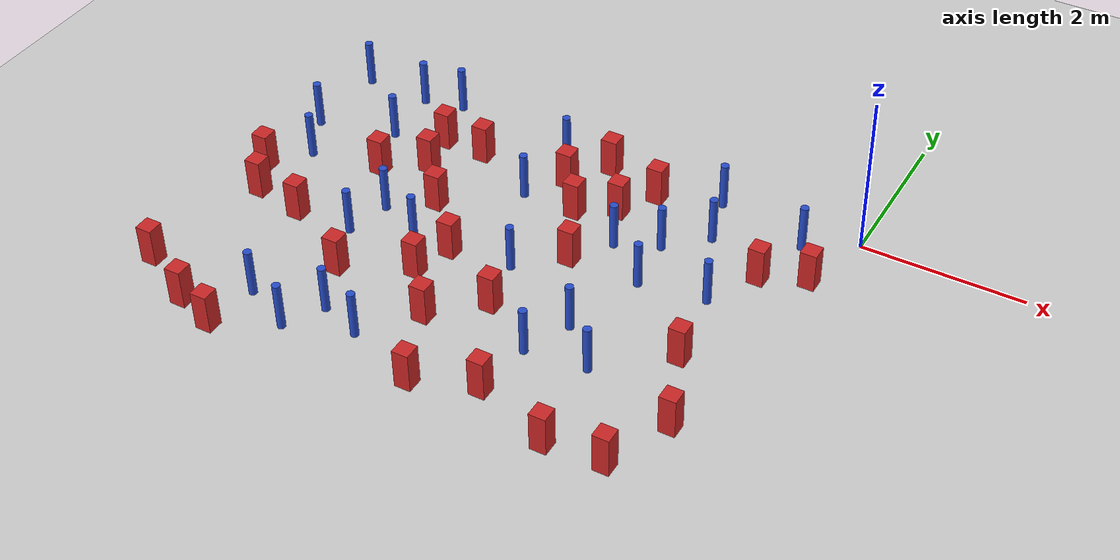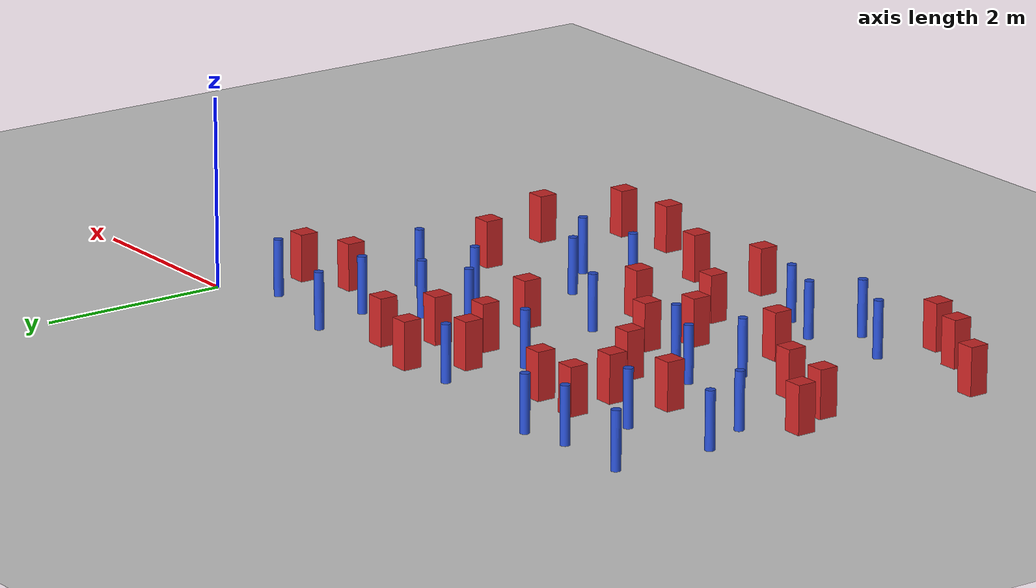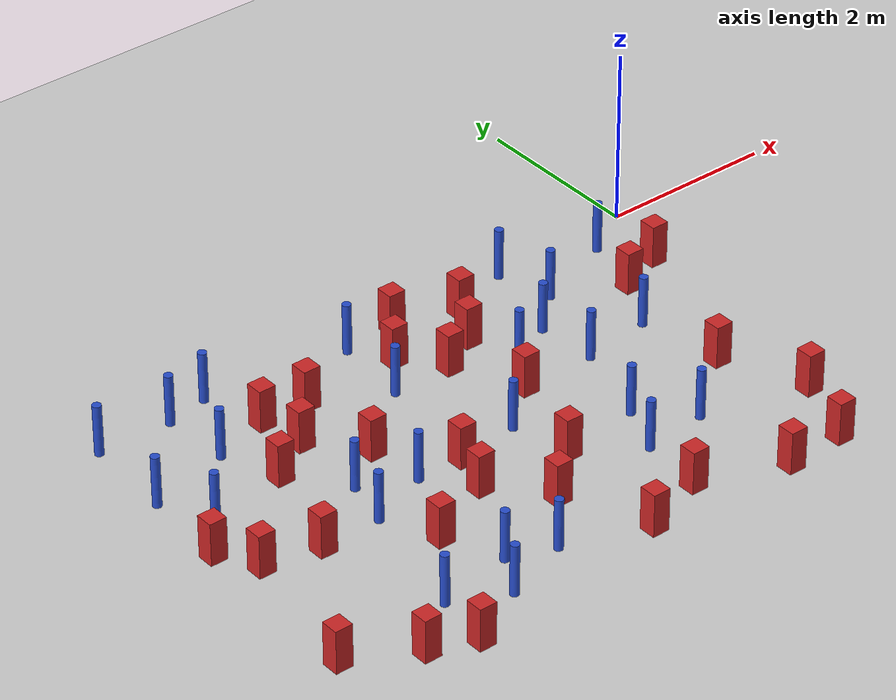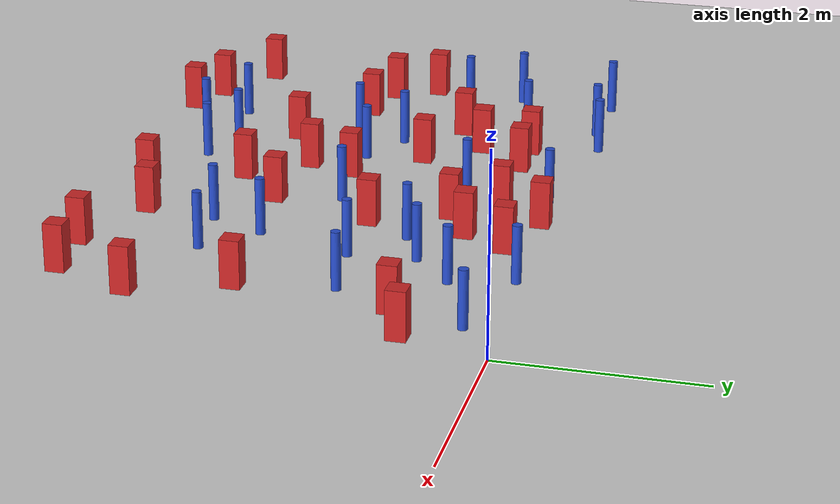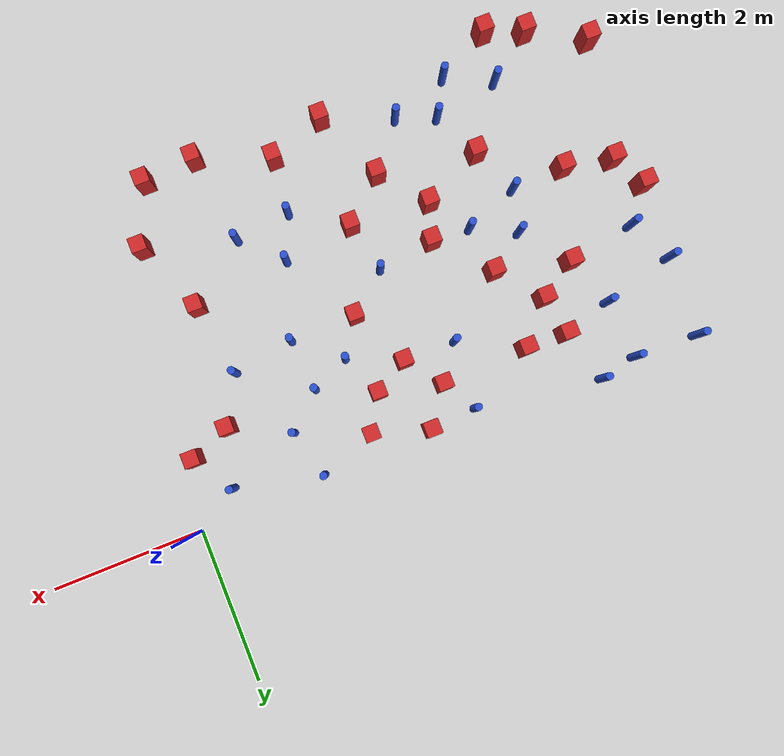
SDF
<sdf version="1.6">
 <world name="default">
  <model name="ground_plane">
   <static>1</static>
   <link name="link">
    <collision name="collision">
     <geometry><plane><normal>0 0 1</normal><size>100 100</size></plane></geometry>
     <surface><friction><ode><mu>100</mu><mu2>50</mu2></ode></friction></surface>
    </collision>
    <visual name="visual">
     <cast_shadows>0</cast_shadows>
     <geometry><plane><normal>0 0 1</normal><size>100 100</size></plane></geometry>
     <material>
      <ambient>1.0 1.0 1.0 1.0</ambient>
      <diffuse>0.8 0.8 0.8 1.0</diffuse>
      <specular>0.01 0.01 0.01 1.000000</specular>
     </material>
    </visual>
   </link>
  </model>
  <model name="pole_obstacle1">
   <static>true</static>
   <pose>-1.12794419745 -1.71041319607 2.88873142074e-08 -9.90536689672e-09 4.60219948993e-07 -1.20965994959e-07</pose>
   <link name="link">
    <pose>0 0 0.3 0 -0 0</pose>
    <inertial>
     <mass>1</mass>
     <inertia><ixx>0.145833</ixx><ixy>0</ixy><ixz>0</ixz><iyy>0.145833</iyy><iyz>0</iyz><izz>0.125</izz></inertia>
    </inertial>
    <collision name="collision">
     <geometry><cylinder><radius>0.05</radius><length>.6</length></cylinder></geometry>
    </collision>
    <visual name="visual">
     <geometry><cylinder><radius>0.05</radius><length>.6</length></cylinder></geometry>
     <material>
      <script><name>Gazebo/Blue</name><uri>file://media/materials/scripts/gazebo.material</uri></script>
     </material>
    </visual>
   </link>
  </model>
  <model name="square_post_obstacle0">
   <static>true</static>
   <pose>-4.23861289255 -2.85928618477 8.22691968438e-08 7.2212513382e-06 -7.54495500217e-07 2.29674213826e-05</pose>
   <link name="link">
    <pose>0 0 0.25 0 -0 0</pose>
    <inertial>
     <mass>100</mass>
     <inertia>
      <ixx>0.166667</ixx>
      <ixy>0</ixy>
      <ixz>0</ixz>
      <iyy>0.166667</iyy>
      <iyz>0</iyz>
      <izz>0.166667</izz>
     </inertia>
    </inertial>
    <collision name="collision"><geometry><box><size>.2 .2 .5</size></box></geometry></collision>
    <visual name="visual">
     <geometry><box><size>.2 .2 .5</size></box></geometry>
     <material>
      <script><name>Gazebo/Red</name><uri>file://media/materials/scripts/gazebo.material</uri></script>
     </material>
    </visual>
   </link>
  </model>
  <model name="square_post_obstacle10">
   <static>true</static>
   <pose>-6.01871886512 -2.64771498312 8.22691968438e-08 7.2212513382e-06 -7.54495500217e-07 2.29674213826e-05</pose>
   <link name="link">
    <pose>0 0 0.25 0 -0 0</pose>
    <inertial>
     <mass>100</mass>
     <inertia>
      <ixx>0.166667</ixx>
      <ixy>0</ixy>
      <ixz>0</ixz>
      <iyy>0.166667</iyy>
      <iyz>0</iyz>
      <izz>0.166667</izz>
     </inertia>
    </inertial>
    <collision name="collision"><geometry><box><size>.2 .2 .5</size></box></geometry></collision>
    <visual name="visual">
     <geometry><box><size>.2 .2 .5</size></box></geometry>
     <material>
      <script><name>Gazebo/Red</name><uri>file://media/materials/scripts/gazebo.material</uri></script>
     </material>
    </visual>
   </link>
  </model>
  <model name="square_post_obstacle12">
   <static>true</static>
   <pose>-1.61959890597 -4.50232946245 8.22691968438e-08 7.2212513382e-06 -7.54495500217e-07 2.29674213826e-05</pose>
   <link name="link">
    <pose>0 0 0.25 0 -0 0</pose>
    <inertial>
     <mass>100</mass>
     <inertia>
      <ixx>0.166667</ixx>
      <ixy>0</ixy>
      <ixz>0</ixz>
      <iyy>0.166667</iyy>
      <iyz>0</iyz>
      <izz>0.166667</izz>
     </inertia>
    </inertial>
    <collision name="collision"><geometry><box><size>.2 .2 .5</size></box></geometry></collision>
    <visual name="visual">
     <geometry><box><size>.2 .2 .5</size></box></geometry>
     <material>
      <script><name>Gazebo/Red</name><uri>file://media/materials/scripts/gazebo.material</uri></script>
     </material>
    </visual>
   </link>
  </model>
  <model name="square_post_obstacle13">
   <static>true</static>
   <pose>-6.90271289844 -2.06878785685 8.22691968438e-08 7.2212513382e-06 -7.54495500217e-07 2.29674213826e-05</pose>
   <link name="link">
    <pose>0 0 0.25 0 -0 0</pose>
    <inertial>
     <mass>100</mass>
     <inertia>
      <ixx>0.166667</ixx>
      <ixy>0</ixy>
      <ixz>0</ixz>
      <iyy>0.166667</iyy>
      <iyz>0</iyz>
      <izz>0.166667</izz>
     </inertia>
    </inertial>
    <collision name="collision"><geometry><box><size>.2 .2 .5</size></box></geometry></collision>
    <visual name="visual">
     <geometry><box><size>.2 .2 .5</size></box></geometry>
     <material>
      <script><name>Gazebo/Red</name><uri>file://media/materials/scripts/gazebo.material</uri></script>
     </material>
    </visual>
   </link>
  </model>
  <model name="square_post_obstacle19">
   <static>true</static>
   <pose>-2.7245175112 -0.820515916125 8.22691968438e-08 7.2212513382e-06 -7.54495500217e-07 2.29674213826e-05</pose>
   <link name="link">
    <pose>0 0 0.25 0 -0 0</pose>
    <inertial>
     <mass>100</mass>
     <inertia>
      <ixx>0.166667</ixx>
      <ixy>0</ixy>
      <ixz>0</ixz>
      <iyy>0.166667</iyy>
      <iyz>0</iyz>
      <izz>0.166667</izz>
     </inertia>
    </inertial>
    <collision name="collision"><geometry><box><size>.2 .2 .5</size></box></geometry></collision>
    <visual name="visual">
     <geometry><box><size>.2 .2 .5</size></box></geometry>
     <material>
      <script><name>Gazebo/Red</name><uri>file://media/materials/scripts/gazebo.material</uri></script>
     </material>
    </visual>
   </link>
  </model>
  <model name="pole_obstacle31">
   <static>true</static>
   <pose>-0.585322574851 -0.355439640165 2.88873142074e-08 -9.90536689558e-09 4.60219948996e-07 -1.20965994957e-07</pose>
   <link name="link">
    <pose>0 0 0.3 0 -0 0</pose>
    <inertial>
     <mass>1</mass>
     <inertia><ixx>0.145833</ixx><ixy>0</ixy><ixz>0</ixz><iyy>0.145833</iyy><iyz>0</iyz><izz>0.125</izz></inertia>
    </inertial>
    <collision name="collision">
     <geometry><cylinder><radius>0.05</radius><length>.6</length></cylinder></geometry>
    </collision>
    <visual name="visual">
     <geometry><cylinder><radius>0.05</radius><length>.6</length></cylinder></geometry>
     <material>
      <script><name>Gazebo/Blue</name><uri>file://media/materials/scripts/gazebo.material</uri></script>
     </material>
    </visual>
   </link>
  </model>
  <model name="square_post_obstacle25">
   <static>true</static>
   <pose>-3.74527833007 -3.45318272488 8.22691968438e-08 7.2212513382e-06 -7.54495500217e-07 2.29674213826e-05</pose>
   <link name="link">
    <pose>0 0 0.25 0 -0 0</pose>
    <inertial>
     <mass>100</mass>
     <inertia>
      <ixx>0.166667</ixx>
      <ixy>0</ixy>
      <ixz>0</ixz>
      <iyy>0.166667</iyy>
      <iyz>0</iyz>
      <izz>0.166667</izz>
     </inertia>
    </inertial>
    <collision name="collision"><geometry><box><size>.2 .2 .5</size></box></geometry></collision>
    <visual name="visual">
     <geometry><box><size>.2 .2 .5</size></box></geometry>
     <material>
      <script><name>Gazebo/Red</name><uri>file://media/materials/scripts/gazebo.material</uri></script>
     </material>
    </visual>
   </link>
  </model>
  <model name="square_post_obstacle26">
   <static>true</static>
   <pose>-0.789775895719 -1.10357461723 8.22691968438e-08 7.2212513382e-06 -7.54495500217e-07 2.29674213826e-05</pose>
   <link name="link">
    <pose>0 0 0.25 0 -0 0</pose>
    <inertial>
     <mass>100</mass>
     <inertia>
      <ixx>0.166667</ixx>
      <ixy>0</ixy>
      <ixz>0</ixz>
      <iyy>0.166667</iyy>
      <iyz>0</iyz>
      <izz>0.166667</izz>
     </inertia>
    </inertial>
    <collision name="collision"><geometry><box><size>.2 .2 .5</size></box></geometry></collision>
    <visual name="visual">
     <geometry><box><size>.2 .2 .5</size></box></geometry>
     <material>
      <script><name>Gazebo/Red</name><uri>file://media/materials/scripts/gazebo.material</uri></script>
     </material>
    </visual>
   </link>
  </model>
  <model name="square_post_obstacle30">
   <static>true</static>
   <pose>-3.33133644619 -4.40594873121 8.22691968438e-08 7.2212513382e-06 -7.54495500217e-07 2.29674213826e-05</pose>
   <link name="link">
    <pose>0 0 0.25 0 -0 0</pose>
    <inertial>
     <mass>100</mass>
     <inertia>
      <ixx>0.166667</ixx>
      <ixy>0</ixy>
      <ixz>0</ixz>
      <iyy>0.166667</iyy>
      <iyz>0</iyz>
      <izz>0.166667</izz>
     </inertia>
    </inertial>
    <collision name="collision"><geometry><box><size>.2 .2 .5</size></box></geometry></collision>
    <visual name="visual">
     <geometry><box><size>.2 .2 .5</size></box></geometry>
     <material>
      <script><name>Gazebo/Red</name><uri>file://media/materials/scripts/gazebo.material</uri></script>
     </material>
    </visual>
   </link>
  </model>
  <model name="pole_obstacle41">
   <static>true</static>
   <pose>-5.02840246182 -4.33032711811 2.88873142074e-08 -9.90536690842e-09 4.60219948965e-07 -1.20965994976e-07</pose>
   <link name="link">
    <pose>0 0 0.3 0 -0 0</pose>
    <inertial>
     <mass>1</mass>
     <inertia><ixx>0.145833</ixx><ixy>0</ixy><ixz>0</ixz><iyy>0.145833</iyy><iyz>0</iyz><izz>0.125</izz></inertia>
    </inertial>
    <collision name="collision">
     <geometry><cylinder><radius>0.05</radius><length>.6</length></cylinder></geometry>
    </collision>
    <visual name="visual">
     <geometry><cylinder><radius>0.05</radius><length>.6</length></cylinder></geometry>
     <material>
      <script><name>Gazebo/Blue</name><uri>file://media/materials/scripts/gazebo.material</uri></script>
     </material>
    </visual>
   </link>
  </model>
  <model name="square_post_obstacle31">
   <static>true</static>
   <pose>-2.81220022089 -1.84098452405 8.22691968438e-08 7.2212513382e-06 -7.54495500217e-07 2.29674213826e-05</pose>
   <link name="link">
    <pose>0 0 0.25 0 -0 0</pose>
    <inertial>
     <mass>100</mass>
     <inertia>
      <ixx>0.166667</ixx>
      <ixy>0</ixy>
      <ixz>0</ixz>
      <iyy>0.166667</iyy>
      <iyz>0</iyz>
      <izz>0.166667</izz>
     </inertia>
    </inertial>
    <collision name="collision"><geometry><box><size>.2 .2 .5</size></box></geometry></collision>
    <visual name="visual">
     <geometry><box><size>.2 .2 .5</size></box></geometry>
     <material>
      <script><name>Gazebo/Red</name><uri>file://media/materials/scripts/gazebo.material</uri></script>
     </material>
    </visual>
   </link>
  </model>
  <model name="pole_obstacle52">
   <static>true</static>
   <pose>-2.49685457262 -1.36036051062 2.88873142074e-08 -9.90536689395e-09 4.60219949e-07 -1.20965994953e-07</pose>
   <link name="link">
    <pose>0 0 0.3 0 -0 0</pose>
    <inertial>
     <mass>1</mass>
     <inertia><ixx>0.145833</ixx><ixy>0</ixy><ixz>0</ixz><iyy>0.145833</iyy><iyz>0</iyz><izz>0.125</izz></inertia>
    </inertial>
    <collision name="collision">
     <geometry><cylinder><radius>0.05</radius><length>.6</length></cylinder></geometry>
    </collision>
    <visual name="visual">
     <geometry><cylinder><radius>0.05</radius><length>.6</length></cylinder></geometry>
     <material>
      <script><name>Gazebo/Blue</name><uri>file://media/materials/scripts/gazebo.material</uri></script>
     </material>
    </visual>
   </link>
  </model>
  <model name="square_post_obstacle41">
   <static>true</static>
   <pose>-0.971532044483 -2.6885056783 8.22691968438e-08 7.2212513382e-06 -7.54495500217e-07 2.29674213826e-05</pose>
   <link name="link">
    <pose>0 0 0.25 0 -0 0</pose>
    <inertial>
     <mass>100</mass>
     <inertia>
      <ixx>0.166667</ixx>
      <ixy>0</ixy>
      <ixz>0</ixz>
      <iyy>0.166667</iyy>
      <iyz>0</iyz>
      <izz>0.166667</izz>
     </inertia>
    </inertial>
    <collision name="collision"><geometry><box><size>.2 .2 .5</size></box></geometry></collision>
    <visual name="visual">
     <geometry><box><size>.2 .2 .5</size></box></geometry>
     <material>
      <script><name>Gazebo/Red</name><uri>file://media/materials/scripts/gazebo.material</uri></script>
     </material>
    </visual>
   </link>
  </model>
  <model name="pole_obstacle55">
   <static>true</static>
   <pose>-2.25177406111 -2.81753825649 2.88873142074e-08 -9.90536690232e-09 4.6021994898e-07 -1.20965994968e-07</pose>
   <link name="link">
    <pose>0 0 0.3 0 -0 0</pose>
    <inertial>
     <mass>1</mass>
     <inertia><ixx>0.145833</ixx><ixy>0</ixy><ixz>0</ixz><iyy>0.145833</iyy><iyz>0</iyz><izz>0.125</izz></inertia>
    </inertial>
    <collision name="collision">
     <geometry><cylinder><radius>0.05</radius><length>.6</length></cylinder></geometry>
    </collision>
    <visual name="visual">
     <geometry><cylinder><radius>0.05</radius><length>.6</length></cylinder></geometry>
     <material>
      <script><name>Gazebo/Blue</name><uri>file://media/materials/scripts/gazebo.material</uri></script>
     </material>
    </visual>
   </link>
  </model>
  <model name="square_post_obstacle44">
   <static>true</static>
   <pose>-4.078971965 -2.37898387037 8.22691968438e-08 7.2212513382e-06 -7.54495500217e-07 2.29674213826e-05</pose>
   <link name="link">
    <pose>0 0 0.25 0 -0 0</pose>
    <inertial>
     <mass>100</mass>
     <inertia>
      <ixx>0.166667</ixx>
      <ixy>0</ixy>
      <ixz>0</ixz>
      <iyy>0.166667</iyy>
      <iyz>0</iyz>
      <izz>0.166667</izz>
     </inertia>
    </inertial>
    <collision name="collision"><geometry><box><size>.2 .2 .5</size></box></geometry></collision>
    <visual name="visual">
     <geometry><box><size>.2 .2 .5</size></box></geometry>
     <material>
      <script><name>Gazebo/Red</name><uri>file://media/materials/scripts/gazebo.material</uri></script>
     </material>
    </visual>
   </link>
  </model>
  <model name="pole_obstacle68">
   <static>true</static>
   <pose>-5.63773774799 -4.03275519616 2.88873142074e-08 -9.90536690819e-09 4.60219948966e-07 -1.20965994975e-07</pose>
   <link name="link">
    <pose>0 0 0.3 0 -0 0</pose>
    <inertial>
     <mass>1</mass>
     <inertia><ixx>0.145833</ixx><ixy>0</ixy><ixz>0</ixz><iyy>0.145833</iyy><iyz>0</iyz><izz>0.125</izz></inertia>
    </inertial>
    <collision name="collision">
     <geometry><cylinder><radius>0.05</radius><length>.6</length></cylinder></geometry>
    </collision>
    <visual name="visual">
     <geometry><cylinder><radius>0.05</radius><length>.6</length></cylinder></geometry>
     <material>
      <script><name>Gazebo/Blue</name><uri>file://media/materials/scripts/gazebo.material</uri></script>
     </material>
    </visual>
   </link>
  </model>
  <model name="square_post_obstacle51">
   <static>true</static>
   <pose>-5.04753763029 -3.24314444858 8.22691968438e-08 7.2212513382e-06 -7.54495500217e-07 2.29674213826e-05</pose>
   <link name="link">
    <pose>0 0 0.25 0 -0 0</pose>
    <inertial>
     <mass>100</mass>
     <inertia>
      <ixx>0.166667</ixx>
      <ixy>0</ixy>
      <ixz>0</ixz>
      <iyy>0.166667</iyy>
      <iyz>0</iyz>
      <izz>0.166667</izz>
     </inertia>
    </inertial>
    <collision name="collision"><geometry><box><size>.2 .2 .5</size></box></geometry></collision>
    <visual name="visual">
     <geometry><box><size>.2 .2 .5</size></box></geometry>
     <material>
      <script><name>Gazebo/Red</name><uri>file://media/materials/scripts/gazebo.material</uri></script>
     </material>
    </visual>
   </link>
  </model>
  <model name="square_post_obstacle57">
   <static>true</static>
   <pose>-0.586242287796 -3.6490633079 8.22691968438e-08 7.2212513382e-06 -7.54495500217e-07 2.29674213826e-05</pose>
   <link name="link">
    <pose>0 0 0.25 0 -0 0</pose>
    <inertial>
     <mass>100</mass>
     <inertia>
      <ixx>0.166667</ixx>
      <ixy>0</ixy>
      <ixz>0</ixz>
      <iyy>0.166667</iyy>
      <iyz>0</iyz>
      <izz>0.166667</izz>
     </inertia>
    </inertial>
    <collision name="collision"><geometry><box><size>.2 .2 .5</size></box></geometry></collision>
    <visual name="visual">
     <geometry><box><size>.2 .2 .5</size></box></geometry>
     <material>
      <script><name>Gazebo/Red</name><uri>file://media/materials/scripts/gazebo.material</uri></script>
     </material>
    </visual>
   </link>
  </model>
  <model name="pole_obstacle70">
   <static>true</static>
   <pose>-6.77782562431 0.00113634829277 2.88873142074e-08 -9.90536689285e-09 4.60219949002e-07 -1.20965994954e-07</pose>
   <link name="link">
    <pose>0 0 0.3 0 -0 0</pose>
    <inertial>
     <mass>1</mass>
     <inertia><ixx>0.145833</ixx><ixy>0</ixy><ixz>0</ixz><iyy>0.145833</iyy><iyz>0</iyz><izz>0.125</izz></inertia>
    </inertial>
    <collision name="collision">
     <geometry><cylinder><radius>0.05</radius><length>.6</length></cylinder></geometry>
    </collision>
    <visual name="visual">
     <geometry><cylinder><radius>0.05</radius><length>.6</length></cylinder></geometry>
     <material>
      <script><name>Gazebo/Blue</name><uri>file://media/materials/scripts/gazebo.material</uri></script>
     </material>
    </visual>
   </link>
  </model>
  <model name="square_post_obstacle61">
   <static>true</static>
   <pose>-4.68151587948 -1.71865466146 8.22691968438e-08 7.2212513382e-06 -7.54495500217e-07 2.29674213826e-05</pose>
   <link name="link">
    <pose>0 0 0.25 0 -0 0</pose>
    <inertial>
     <mass>100</mass>
     <inertia>
      <ixx>0.166667</ixx>
      <ixy>0</ixy>
      <ixz>0</ixz>
      <iyy>0.166667</iyy>
      <iyz>0</iyz>
      <izz>0.166667</izz>
     </inertia>
    </inertial>
    <collision name="collision"><geometry><box><size>.2 .2 .5</size></box></geometry></collision>
    <visual name="visual">
     <geometry><box><size>.2 .2 .5</size></box></geometry>
     <material>
      <script><name>Gazebo/Red</name><uri>file://media/materials/scripts/gazebo.material</uri></script>
     </material>
    </visual>
   </link>
  </model>
  <model name="pole_obstacle75">
   <static>true</static>
   <pose>-1.75779612502 -3.30815682891 2.88873142074e-08 -9.90536689791e-09 4.6021994899e-07 -1.20965994959e-07</pose>
   <link name="link">
    <pose>0 0 0.3 0 -0 0</pose>
    <inertial>
     <mass>1</mass>
     <inertia><ixx>0.145833</ixx><ixy>0</ixy><ixz>0</ixz><iyy>0.145833</iyy><iyz>0</iyz><izz>0.125</izz></inertia>
    </inertial>
    <collision name="collision">
     <geometry><cylinder><radius>0.05</radius><length>.6</length></cylinder></geometry>
    </collision>
    <visual name="visual">
     <geometry><cylinder><radius>0.05</radius><length>.6</length></cylinder></geometry>
     <material>
      <script><name>Gazebo/Blue</name><uri>file://media/materials/scripts/gazebo.material</uri></script>
     </material>
    </visual>
   </link>
  </model>
  <model name="pole_obstacle79">
   <static>true</static>
   <pose>-5.87932402268 -0.809223617223 2.88873142074e-08 -9.90536689837e-09 4.60219948989e-07 -1.2096599496e-07</pose>
   <link name="link">
    <pose>0 0 0.3 0 -0 0</pose>
    <inertial>
     <mass>1</mass>
     <inertia><ixx>0.145833</ixx><ixy>0</ixy><ixz>0</ixz><iyy>0.145833</iyy><iyz>0</iyz><izz>0.125</izz></inertia>
    </inertial>
    <collision name="collision">
     <geometry><cylinder><radius>0.05</radius><length>.6</length></cylinder></geometry>
    </collision>
    <visual name="visual">
     <geometry><cylinder><radius>0.05</radius><length>.6</length></cylinder></geometry>
     <material>
      <script><name>Gazebo/Blue</name><uri>file://media/materials/scripts/gazebo.material</uri></script>
     </material>
    </visual>
   </link>
  </model>
  <model name="square_post_obstacle72">
   <static>true</static>
   <pose>-3.17727930824 -1.07449339515 8.22691968438e-08 7.2212513382e-06 -7.54495500217e-07 2.29674213826e-05</pose>
   <link name="link">
    <pose>0 0 0.25 0 -0 0</pose>
    <inertial>
     <mass>100</mass>
     <inertia>
      <ixx>0.166667</ixx>
      <ixy>0</ixy>
      <ixz>0</ixz>
      <iyy>0.166667</iyy>
      <iyz>0</iyz>
      <izz>0.166667</izz>
     </inertia>
    </inertial>
    <collision name="collision"><geometry><box><size>.2 .2 .5</size></box></geometry></collision>
    <visual name="visual">
     <geometry><box><size>.2 .2 .5</size></box></geometry>
     <material>
      <script><name>Gazebo/Red</name><uri>file://media/materials/scripts/gazebo.material</uri></script>
     </material>
    </visual>
   </link>
  </model>
  <model name="pole_obstacle87">
   <static>true</static>
   <pose>-4.60158974101 -2.34469577858 2.88873142074e-08 -9.90536690245e-09 4.6021994898e-07 -1.20965994966e-07</pose>
   <link name="link">
    <pose>0 0 0.3 0 -0 0</pose>
    <inertial>
     <mass>1</mass>
     <inertia><ixx>0.145833</ixx><ixy>0</ixy><ixz>0</ixz><iyy>0.145833</iyy><iyz>0</iyz><izz>0.125</izz></inertia>
    </inertial>
    <collision name="collision">
     <geometry><cylinder><radius>0.05</radius><length>.6</length></cylinder></geometry>
    </collision>
    <visual name="visual">
     <geometry><cylinder><radius>0.05</radius><length>.6</length></cylinder></geometry>
     <material>
      <script><name>Gazebo/Blue</name><uri>file://media/materials/scripts/gazebo.material</uri></script>
     </material>
    </visual>
   </link>
  </model>
  <model name="square_post_obstacle78">
   <static>true</static>
   <pose>-0.256691971917 -0.884450498244 8.22691968438e-08 7.2212513382e-06 -7.54495500217e-07 2.29674213826e-05</pose>
   <link name="link">
    <pose>0 0 0.25 0 -0 0</pose>
    <inertial>
     <mass>100</mass>
     <inertia>
      <ixx>0.166667</ixx>
      <ixy>0</ixy>
      <ixz>0</ixz>
      <iyy>0.166667</iyy>
      <iyz>0</iyz>
      <izz>0.166667</izz>
     </inertia>
    </inertial>
    <collision name="collision"><geometry><box><size>.2 .2 .5</size></box></geometry></collision>
    <visual name="visual">
     <geometry><box><size>.2 .2 .5</size></box></geometry>
     <material>
      <script><name>Gazebo/Red</name><uri>file://media/materials/scripts/gazebo.material</uri></script>
     </material>
    </visual>
   </link>
  </model>
  <model name="pole_obstacle90">
   <static>true</static>
   <pose>-1.71635670873 -0.0902204012358 2.88873142074e-08 -9.90536689715e-09 4.60219948992e-07 -1.20965994959e-07</pose>
   <link name="link">
    <pose>0 0 0.3 0 -0 0</pose>
    <inertial>
     <mass>1</mass>
     <inertia><ixx>0.145833</ixx><ixy>0</ixy><ixz>0</ixz><iyy>0.145833</iyy><iyz>0</iyz><izz>0.125</izz></inertia>
    </inertial>
    <collision name="collision">
     <geometry><cylinder><radius>0.05</radius><length>.6</length></cylinder></geometry>
    </collision>
    <visual name="visual">
     <geometry><cylinder><radius>0.05</radius><length>.6</length></cylinder></geometry>
     <material>
      <script><name>Gazebo/Blue</name><uri>file://media/materials/scripts/gazebo.material</uri></script>
     </material>
    </visual>
   </link>
  </model>
  <model name="square_post_obstacle83">
   <static>true</static>
   <pose>-0.920028405974 -4.44983123281 8.22691968438e-08 7.22125133819e-06 -7.54495500217e-07 2.29674213826e-05</pose>
   <link name="link">
    <pose>0 0 0.25 0 -0 0</pose>
    <inertial>
     <mass>100</mass>
     <inertia>
      <ixx>0.166667</ixx>
      <ixy>0</ixy>
      <ixz>0</ixz>
      <iyy>0.166667</iyy>
      <iyz>0</iyz>
      <izz>0.166667</izz>
     </inertia>
    </inertial>
    <collision name="collision"><geometry><box><size>.2 .2 .5</size></box></geometry></collision>
    <visual name="visual">
     <geometry><box><size>.2 .2 .5</size></box></geometry>
     <material>
      <script><name>Gazebo/Red</name><uri>file://media/materials/scripts/gazebo.material</uri></script>
     </material>
    </visual>
   </link>
  </model>
  <model name="square_post_obstacle88">
   <static>true</static>
   <pose>-3.1866065694 -2.94694183823 8.22691968438e-08 7.2212513382e-06 -7.54495500217e-07 2.29674213826e-05</pose>
   <link name="link">
    <pose>0 0 0.25 0 -0 0</pose>
    <inertial>
     <mass>100</mass>
     <inertia>
      <ixx>0.166667</ixx>
      <ixy>0</ixy>
      <ixz>0</ixz>
      <iyy>0.166667</iyy>
      <iyz>0</iyz>
      <izz>0.166667</izz>
     </inertia>
    </inertial>
    <collision name="collision"><geometry><box><size>.2 .2 .5</size></box></geometry></collision>
    <visual name="visual">
     <geometry><box><size>.2 .2 .5</size></box></geometry>
     <material>
      <script><name>Gazebo/Red</name><uri>file://media/materials/scripts/gazebo.material</uri></script>
     </material>
    </visual>
   </link>
  </model>
  <model name="pole_obstacle105">
   <static>true</static>
   <pose>-1.93680773492 -1.82747432737 2.88873142074e-08 -9.90536689672e-09 4.60219948993e-07 -1.20965994959e-07</pose>
   <link name="link">
    <pose>0 0 0.3 0 -0 0</pose>
    <inertial>
     <mass>1</mass>
     <inertia><ixx>0.145833</ixx><ixy>0</ixy><ixz>0</ixz><iyy>0.145833</iyy><iyz>0</iyz><izz>0.125</izz></inertia>
    </inertial>
    <collision name="collision">
     <geometry><cylinder><radius>0.05</radius><length>.6</length></cylinder></geometry>
    </collision>
    <visual name="visual">
     <geometry><cylinder><radius>0.05</radius><length>.6</length></cylinder></geometry>
     <material>
      <script><name>Gazebo/Blue</name><uri>file://media/materials/scripts/gazebo.material</uri></script>
     </material>
    </visual>
   </link>
  </model>
  <model name="square_post_obstacle103">
   <static>true</static>
   <pose>-5.14502794473 -1.16108756898 8.22691968438e-08 7.2212513382e-06 -7.54495500217e-07 2.29674213826e-05</pose>
   <link name="link">
    <pose>0 0 0.25 0 -0 0</pose>
    <inertial>
     <mass>100</mass>
     <inertia>
      <ixx>0.166667</ixx>
      <ixy>0</ixy>
      <ixz>0</ixz>
      <iyy>0.166667</iyy>
      <iyz>0</iyz>
      <izz>0.166667</izz>
     </inertia>
    </inertial>
    <collision name="collision"><geometry><box><size>.2 .2 .5</size></box></geometry></collision>
    <visual name="visual">
     <geometry><box><size>.2 .2 .5</size></box></geometry>
     <material>
      <script><name>Gazebo/Red</name><uri>file://media/materials/scripts/gazebo.material</uri></script>
     </material>
    </visual>
   </link>
  </model>
  <model name="square_post_obstacle111">
   <static>true</static>
   <pose>-3.18437519615 -0.134614892445 8.22691968438e-08 7.2212513382e-06 -7.54495500217e-07 2.29674213826e-05</pose>
   <link name="link">
    <pose>0 0 0.25 0 -0 0</pose>
    <inertial>
     <mass>100</mass>
     <inertia>
      <ixx>0.166667</ixx>
      <ixy>0</ixy>
      <ixz>0</ixz>
      <iyy>0.166667</iyy>
      <iyz>0</iyz>
      <izz>0.166667</izz>
     </inertia>
    </inertial>
    <collision name="collision"><geometry><box><size>.2 .2 .5</size></box></geometry></collision>
    <visual name="visual">
     <geometry><box><size>.2 .2 .5</size></box></geometry>
     <material>
      <script><name>Gazebo/Red</name><uri>file://media/materials/scripts/gazebo.material</uri></script>
     </material>
    </visual>
   </link>
  </model>
  <model name="pole_obstacle117">
   <static>true</static>
   <pose>-3.79451732979 -0.170295836427 2.88873142074e-08 -9.90536689156e-09 4.60219949005e-07 -1.20965994951e-07</pose>
   <link name="link">
    <pose>0 0 0.3 0 -0 0</pose>
    <inertial>
     <mass>1</mass>
     <inertia><ixx>0.145833</ixx><ixy>0</ixy><ixz>0</ixz><iyy>0.145833</iyy><iyz>0</iyz><izz>0.125</izz></inertia>
    </inertial>
    <collision name="collision">
     <geometry><cylinder><radius>0.05</radius><length>.6</length></cylinder></geometry>
    </collision>
    <visual name="visual">
     <geometry><cylinder><radius>0.05</radius><length>.6</length></cylinder></geometry>
     <material>
      <script><name>Gazebo/Blue</name><uri>file://media/materials/scripts/gazebo.material</uri></script>
     </material>
    </visual>
   </link>
  </model>
  <model name="pole_obstacle124">
   <static>true</static>
   <pose>-5.17241742051 -2.06234358897 2.88873142074e-08 -9.90536690245e-09 4.6021994898e-07 -1.20965994966e-07</pose>
   <link name="link">
    <pose>0 0 0.3 0 -0 0</pose>
    <inertial>
     <mass>1</mass>
     <inertia><ixx>0.145833</ixx><ixy>0</ixy><ixz>0</ixz><iyy>0.145833</iyy><iyz>0</iyz><izz>0.125</izz></inertia>
    </inertial>
    <collision name="collision">
     <geometry><cylinder><radius>0.05</radius><length>.6</length></cylinder></geometry>
    </collision>
    <visual name="visual">
     <geometry><cylinder><radius>0.05</radius><length>.6</length></cylinder></geometry>
     <material>
      <script><name>Gazebo/Blue</name><uri>file://media/materials/scripts/gazebo.material</uri></script>
     </material>
    </visual>
   </link>
  </model>
  <model name="pole_obstacle131">
   <static>true</static>
   <pose>-1.54598782876 -0.724276757912 2.88873142074e-08 -9.90536689692e-09 4.60219948993e-07 -1.20965994958e-07</pose>
   <link name="link">
    <pose>0 0 0.3 0 -0 0</pose>
    <inertial>
     <mass>1</mass>
     <inertia><ixx>0.145833</ixx><ixy>0</ixy><ixz>0</ixz><iyy>0.145833</iyy><iyz>0</iyz><izz>0.125</izz></inertia>
    </inertial>
    <collision name="collision">
     <geometry><cylinder><radius>0.05</radius><length>.6</length></cylinder></geometry>
    </collision>
    <visual name="visual">
     <geometry><cylinder><radius>0.05</radius><length>.6</length></cylinder></geometry>
     <material>
      <script><name>Gazebo/Blue</name><uri>file://media/materials/scripts/gazebo.material</uri></script>
     </material>
    </visual>
   </link>
  </model>
  <model name="pole_obstacle136">
   <static>true</static>
   <pose>-6.83197415318 -1.05146874532 2.88873142074e-08 -9.90536689445e-09 4.60219948999e-07 -1.20965994956e-07</pose>
   <link name="link">
    <pose>0 0 0.3 0 -0 0</pose>
    <inertial>
     <mass>1</mass>
     <inertia><ixx>0.145833</ixx><ixy>0</ixy><ixz>0</ixz><iyy>0.145833</iyy><iyz>0</iyz><izz>0.125</izz></inertia>
    </inertial>
    <collision name="collision">
     <geometry><cylinder><radius>0.05</radius><length>.6</length></cylinder></geometry>
    </collision>
    <visual name="visual">
     <geometry><cylinder><radius>0.05</radius><length>.6</length></cylinder></geometry>
     <material>
      <script><name>Gazebo/Blue</name><uri>file://media/materials/scripts/gazebo.material</uri></script>
     </material>
    </visual>
   </link>
  </model>
  <model name="pole_obstacle138">
   <static>true</static>
   <pose>-3.33397687653 -2.26946309318 2.88873142074e-08 -9.90536690232e-09 4.6021994898e-07 -1.20965994968e-07</pose>
   <link name="link">
    <pose>0 0 0.3 0 -0 0</pose>
    <inertial>
     <mass>1</mass>
     <inertia><ixx>0.145833</ixx><ixy>0</ixy><ixz>0</ixz><iyy>0.145833</iyy><iyz>0</iyz><izz>0.125</izz></inertia>
    </inertial>
    <collision name="collision">
     <geometry><cylinder><radius>0.05</radius><length>.6</length></cylinder></geometry>
    </collision>
    <visual name="visual">
     <geometry><cylinder><radius>0.05</radius><length>.6</length></cylinder></geometry>
     <material>
      <script><name>Gazebo/Blue</name><uri>file://media/materials/scripts/gazebo.material</uri></script>
     </material>
    </visual>
   </link>
  </model>
  <model name="square_post_obstacle138">
   <static>true</static>
   <pose>-4.68442025595 -0.652154622862 8.22691968438e-08 7.2212513382e-06 -7.54495500217e-07 2.29674213826e-05</pose>
   <link name="link">
    <pose>0 0 0.25 0 -0 0</pose>
    <inertial>
     <mass>100</mass>
     <inertia>
      <ixx>0.166667</ixx>
      <ixy>0</ixy>
      <ixz>0</ixz>
      <iyy>0.166667</iyy>
      <iyz>0</iyz>
      <izz>0.166667</izz>
     </inertia>
    </inertial>
    <collision name="collision"><geometry><box><size>.2 .2 .5</size></box></geometry></collision>
    <visual name="visual">
     <geometry><box><size>.2 .2 .5</size></box></geometry>
     <material>
      <script><name>Gazebo/Red</name><uri>file://media/materials/scripts/gazebo.material</uri></script>
     </material>
    </visual>
   </link>
  </model>
  <model name="pole_obstacle144">
   <static>true</static>
   <pose>-3.86995197708 -1.05901008571 2.88873142074e-08 -9.90536691123e-09 4.60219948959e-07 -1.20965994982e-07</pose>
   <link name="link">
    <pose>0 0 0.3 0 -0 0</pose>
    <inertial>
     <mass>1</mass>
     <inertia><ixx>0.145833</ixx><ixy>0</ixy><ixz>0</ixz><iyy>0.145833</iyy><iyz>0</iyz><izz>0.125</izz></inertia>
    </inertial>
    <collision name="collision">
     <geometry><cylinder><radius>0.05</radius><length>.6</length></cylinder></geometry>
    </collision>
    <visual name="visual">
     <geometry><cylinder><radius>0.05</radius><length>.6</length></cylinder></geometry>
     <material>
      <script><name>Gazebo/Blue</name><uri>file://media/materials/scripts/gazebo.material</uri></script>
     </material>
    </visual>
   </link>
  </model>
  <model name="square_post_obstacle141">
   <static>true</static>
   <pose>-5.23245823112 -0.636901605071 8.22691968438e-08 7.2212513382e-06 -7.54495500217e-07 2.29674213826e-05</pose>
   <link name="link">
    <pose>0 0 0.25 0 -0 0</pose>
    <inertial>
     <mass>100</mass>
     <inertia>
      <ixx>0.166667</ixx>
      <ixy>0</ixy>
      <ixz>0</ixz>
      <iyy>0.166667</iyy>
      <iyz>0</iyz>
      <izz>0.166667</izz>
     </inertia>
    </inertial>
    <collision name="collision"><geometry><box><size>.2 .2 .5</size></box></geometry></collision>
    <visual name="visual">
     <geometry><box><size>.2 .2 .5</size></box></geometry>
     <material>
      <script><name>Gazebo/Red</name><uri>file://media/materials/scripts/gazebo.material</uri></script>
     </material>
    </visual>
   </link>
  </model>
  <model name="pole_obstacle153">
   <static>true</static>
   <pose>-5.31014575566 -2.61487754724 2.88873142074e-08 -9.90536690245e-09 4.6021994898e-07 -1.20965994966e-07</pose>
   <link name="link">
    <pose>0 0 0.3 0 -0 0</pose>
    <inertial>
     <mass>1</mass>
     <inertia><ixx>0.145833</ixx><ixy>0</ixy><ixz>0</ixz><iyy>0.145833</iyy><iyz>0</iyz><izz>0.125</izz></inertia>
    </inertial>
    <collision name="collision">
     <geometry><cylinder><radius>0.05</radius><length>.6</length></cylinder></geometry>
    </collision>
    <visual name="visual">
     <geometry><cylinder><radius>0.05</radius><length>.6</length></cylinder></geometry>
     <material>
      <script><name>Gazebo/Blue</name><uri>file://media/materials/scripts/gazebo.material</uri></script>
     </material>
    </visual>
   </link>
  </model>
  <model name="pole_obstacle156">
   <static>true</static>
   <pose>-2.4976063585 -3.39023252343 2.88873142074e-08 -9.90536690232e-09 4.6021994898e-07 -1.20965994968e-07</pose>
   <link name="link">
    <pose>0 0 0.3 0 -0 0</pose>
    <inertial>
     <mass>1</mass>
     <inertia><ixx>0.145833</ixx><ixy>0</ixy><ixz>0</ixz><iyy>0.145833</iyy><iyz>0</iyz><izz>0.125</izz></inertia>
    </inertial>
    <collision name="collision">
     <geometry><cylinder><radius>0.05</radius><length>.6</length></cylinder></geometry>
    </collision>
    <visual name="visual">
     <geometry><cylinder><radius>0.05</radius><length>.6</length></cylinder></geometry>
     <material>
      <script><name>Gazebo/Blue</name><uri>file://media/materials/scripts/gazebo.material</uri></script>
     </material>
    </visual>
   </link>
  </model>
  <model name="square_post_obstacle157">
   <static>true</static>
   <pose>-2.45445587732 -0.357969701947 8.22691968438e-08 7.2212513382e-06 -7.54495500217e-07 2.29674213826e-05</pose>
   <link name="link">
    <pose>0 0 0.25 0 -0 0</pose>
    <inertial>
     <mass>100</mass>
     <inertia>
      <ixx>0.166667</ixx>
      <ixy>0</ixy>
      <ixz>0</ixz>
      <iyy>0.166667</iyy>
      <iyz>0</iyz>
      <izz>0.166667</izz>
     </inertia>
    </inertial>
    <collision name="collision"><geometry><box><size>.2 .2 .5</size></box></geometry></collision>
    <visual name="visual">
     <geometry><box><size>.2 .2 .5</size></box></geometry>
     <material>
      <script><name>Gazebo/Red</name><uri>file://media/materials/scripts/gazebo.material</uri></script>
     </material>
    </visual>
   </link>
  </model>
  <model name="square_post_obstacle164">
   <static>true</static>
   <pose>-5.73853484167 -4.70432738972 8.22691968438e-08 7.22125133819e-06 -7.54495500217e-07 2.29674213826e-05</pose>
   <link name="link">
    <pose>0 0 0.25 0 -0 0</pose>
    <inertial>
     <mass>100</mass>
     <inertia>
      <ixx>0.166667</ixx>
      <ixy>0</ixy>
      <ixz>0</ixz>
      <iyy>0.166667</iyy>
      <iyz>0</iyz>
      <izz>0.166667</izz>
     </inertia>
    </inertial>
    <collision name="collision"><geometry><box><size>.2 .2 .5</size></box></geometry></collision>
    <visual name="visual">
     <geometry><box><size>.2 .2 .5</size></box></geometry>
     <material>
      <script><name>Gazebo/Red</name><uri>file://media/materials/scripts/gazebo.material</uri></script>
     </material>
    </visual>
   </link>
  </model>
  <model name="pole_obstacle176">
   <static>true</static>
   <pose>-6.54430575501 -1.62077481353 2.88873142074e-08 -9.90536689445e-09 4.60219948999e-07 -1.20965994956e-07</pose>
   <link name="link">
    <pose>0 0 0.3 0 -0 0</pose>
    <inertial>
     <mass>1</mass>
     <inertia><ixx>0.145833</ixx><ixy>0</ixy><ixz>0</ixz><iyy>0.145833</iyy><iyz>0</iyz><izz>0.125</izz></inertia>
    </inertial>
    <collision name="collision">
     <geometry><cylinder><radius>0.05</radius><length>.6</length></cylinder></geometry>
    </collision>
    <visual name="visual">
     <geometry><cylinder><radius>0.05</radius><length>.6</length></cylinder></geometry>
     <material>
      <script><name>Gazebo/Blue</name><uri>file://media/materials/scripts/gazebo.material</uri></script>
     </material>
    </visual>
   </link>
  </model>
  <model name="square_post_obstacle177">
   <static>true</static>
   <pose>-3.53413355078 -0.616390315092 8.22691968438e-08 7.2212513382e-06 -7.54495500217e-07 2.29674213826e-05</pose>
   <link name="link">
    <pose>0 0 0.25 0 -0 0</pose>
    <inertial>
     <mass>100</mass>
     <inertia>
      <ixx>0.166667</ixx>
      <ixy>0</ixy>
      <ixz>0</ixz>
      <iyy>0.166667</iyy>
      <iyz>0</iyz>
      <izz>0.166667</izz>
     </inertia>
    </inertial>
    <collision name="collision"><geometry><box><size>.2 .2 .5</size></box></geometry></collision>
    <visual name="visual">
     <geometry><box><size>.2 .2 .5</size></box></geometry>
     <material>
      <script><name>Gazebo/Red</name><uri>file://media/materials/scripts/gazebo.material</uri></script>
     </material>
    </visual>
   </link>
  </model>
  <model name="square_post_obstacle180">
   <static>true</static>
   <pose>-6.97665532639 -4.11283758462 8.22691968438e-08 7.22125133819e-06 -7.54495500217e-07 2.29674213826e-05</pose>
   <link name="link">
    <pose>0 0 0.25 0 -0 0</pose>
    <inertial>
     <mass>100</mass>
     <inertia>
      <ixx>0.166667</ixx>
      <ixy>0</ixy>
      <ixz>0</ixz>
      <iyy>0.166667</iyy>
      <iyz>0</iyz>
      <izz>0.166667</izz>
     </inertia>
    </inertial>
    <collision name="collision"><geometry><box><size>.2 .2 .5</size></box></geometry></collision>
    <visual name="visual">
     <geometry><box><size>.2 .2 .5</size></box></geometry>
     <material>
      <script><name>Gazebo/Red</name><uri>file://media/materials/scripts/gazebo.material</uri></script>
     </material>
    </visual>
   </link>
  </model>
  <model name="pole_obstacle182">
   <static>true</static>
   <pose>-4.7635875324 -3.86516620105 2.88873142074e-08 -9.90536690245e-09 4.6021994898e-07 -1.20965994966e-07</pose>
   <link name="link">
    <pose>0 0 0.3 0 -0 0</pose>
    <inertial>
     <mass>1</mass>
     <inertia><ixx>0.145833</ixx><ixy>0</ixy><ixz>0</ixz><iyy>0.145833</iyy><iyz>0</iyz><izz>0.125</izz></inertia>
    </inertial>
    <collision name="collision">
     <geometry><cylinder><radius>0.05</radius><length>.6</length></cylinder></geometry>
    </collision>
    <visual name="visual">
     <geometry><cylinder><radius>0.05</radius><length>.6</length></cylinder></geometry>
     <material>
      <script><name>Gazebo/Blue</name><uri>file://media/materials/scripts/gazebo.material</uri></script>
     </material>
    </visual>
   </link>
  </model>
  <model name="pole_obstacle185">
   <static>true</static>
   <pose>-4.24871500413 -4.05331351362 2.88873142074e-08 -9.90536690842e-09 4.60219948965e-07 -1.20965994976e-07</pose>
   <link name="link">
    <pose>0 0 0.3 0 -0 0</pose>
    <inertial>
     <mass>1</mass>
     <inertia><ixx>0.145833</ixx><ixy>0</ixy><ixz>0</ixz><iyy>0.145833</iyy><iyz>0</iyz><izz>0.125</izz></inertia>
    </inertial>
    <collision name="collision">
     <geometry><cylinder><radius>0.05</radius><length>.6</length></cylinder></geometry>
    </collision>
    <visual name="visual">
     <geometry><cylinder><radius>0.05</radius><length>.6</length></cylinder></geometry>
     <material>
      <script><name>Gazebo/Blue</name><uri>file://media/materials/scripts/gazebo.material</uri></script>
     </material>
    </visual>
   </link>
  </model>
  <model name="square_post_obstacle187">
   <static>true</static>
   <pose>-6.24407585763 -4.51671707931 8.22691968438e-08 7.22125133819e-06 -7.54495500217e-07 2.29674213826e-05</pose>
   <link name="link">
    <pose>0 0 0.25 0 -0 0</pose>
    <inertial>
     <mass>100</mass>
     <inertia>
      <ixx>0.166667</ixx>
      <ixy>0</ixy>
      <ixz>0</ixz>
      <iyy>0.166667</iyy>
      <iyz>0</iyz>
      <izz>0.166667</izz>
     </inertia>
    </inertial>
    <collision name="collision"><geometry><box><size>.2 .2 .5</size></box></geometry></collision>
    <visual name="visual">
     <geometry><box><size>.2 .2 .5</size></box></geometry>
     <material>
      <script><name>Gazebo/Red</name><uri>file://media/materials/scripts/gazebo.material</uri></script>
     </material>
    </visual>
   </link>
  </model>
  <model name="square_post_obstacle194">
   <static>true</static>
   <pose>-5.64348467227 -1.47724055688 8.22691968438e-08 7.2212513382e-06 -7.54495500217e-07 2.29674213826e-05</pose>
   <link name="link">
    <pose>0 0 0.25 0 -0 0</pose>
    <inertial>
     <mass>100</mass>
     <inertia>
      <ixx>0.166667</ixx>
      <ixy>0</ixy>
      <ixz>0</ixz>
      <iyy>0.166667</iyy>
      <iyz>0</iyz>
      <izz>0.166667</izz>
     </inertia>
    </inertial>
    <collision name="collision"><geometry><box><size>.2 .2 .5</size></box></geometry></collision>
    <visual name="visual">
     <geometry><box><size>.2 .2 .5</size></box></geometry>
     <material>
      <script><name>Gazebo/Red</name><uri>file://media/materials/scripts/gazebo.material</uri></script>
     </material>
    </visual>
   </link>
  </model>
  <model name="pole_obstacle188">
   <static>true</static>
   <pose>-5.93320265341 -0.0327498427787 2.88873142074e-08 -9.90536689836e-09 4.60219948989e-07 -1.20965994962e-07</pose>
   <link name="link">
    <pose>0 0 0.3 0 -0 0</pose>
    <inertial>
     <mass>1</mass>
     <inertia><ixx>0.145833</ixx><ixy>0</ixy><ixz>0</ixz><iyy>0.145833</iyy><iyz>0</iyz><izz>0.125</izz></inertia>
    </inertial>
    <collision name="collision">
     <geometry><cylinder><radius>0.05</radius><length>.6</length></cylinder></geometry>
    </collision>
    <visual name="visual">
     <geometry><cylinder><radius>0.05</radius><length>.6</length></cylinder></geometry>
     <material>
      <script><name>Gazebo/Blue</name><uri>file://media/materials/scripts/gazebo.material</uri></script>
     </material>
    </visual>
   </link>
  </model>
  <model name="pole_obstacle201">
   <static>true</static>
   <pose>-1.99607492412 -1.13812627215 2.88873142074e-08 -9.90536690043e-09 4.60219948984e-07 -1.20965994963e-07</pose>
   <link name="link">
    <pose>0 0 0.3 0 -0 0</pose>
    <inertial>
     <mass>1</mass>
     <inertia><ixx>0.145833</ixx><ixy>0</ixy><ixz>0</ixz><iyy>0.145833</iyy><iyz>0</iyz><izz>0.125</izz></inertia>
    </inertial>
    <collision name="collision">
     <geometry><cylinder><radius>0.05</radius><length>.6</length></cylinder></geometry>
    </collision>
    <visual name="visual">
     <geometry><cylinder><radius>0.05</radius><length>.6</length></cylinder></geometry>
     <material>
      <script><name>Gazebo/Blue</name><uri>file://media/materials/scripts/gazebo.material</uri></script>
     </material>
    </visual>
   </link>
  </model>
  <model name="pole_obstacle204">
   <static>true</static>
   <pose>-5.43768150954 0.072916320365 2.88873142074e-08 -9.90536689222e-09 4.60219949004e-07 -1.20965994951e-07</pose>
   <link name="link">
    <pose>0 0 0.3 0 -0 0</pose>
    <inertial>
     <mass>1</mass>
     <inertia><ixx>0.145833</ixx><ixy>0</ixy><ixz>0</ixz><iyy>0.145833</iyy><iyz>0</iyz><izz>0.125</izz></inertia>
    </inertial>
    <collision name="collision">
     <geometry><cylinder><radius>0.05</radius><length>.6</length></cylinder></geometry>
    </collision>
    <visual name="visual">
     <geometry><cylinder><radius>0.05</radius><length>.6</length></cylinder></geometry>
     <material>
      <script><name>Gazebo/Blue</name><uri>file://media/materials/scripts/gazebo.material</uri></script>
     </material>
    </visual>
   </link>
  </model>
  <model name="square_post_obstacle226">
   <static>true</static>
   <pose>-2.58308996738 -4.13474003534 8.22691968438e-08 7.22125133819e-06 -7.54495500217e-07 2.29674213826e-05</pose>
   <link name="link">
    <pose>0 0 0.25 0 -0 0</pose>
    <inertial>
     <mass>100</mass>
     <inertia>
      <ixx>0.166667</ixx>
      <ixy>0</ixy>
      <ixz>0</ixz>
      <iyy>0.166667</iyy>
      <iyz>0</iyz>
      <izz>0.166667</izz>
     </inertia>
    </inertial>
    <collision name="collision"><geometry><box><size>.2 .2 .5</size></box></geometry></collision>
    <visual name="visual">
     <geometry><box><size>.2 .2 .5</size></box></geometry>
     <material>
      <script><name>Gazebo/Red</name><uri>file://media/materials/scripts/gazebo.material</uri></script>
     </material>
    </visual>
   </link>
  </model>
  <model name="square_post_obstacle228">
   <static>true</static>
   <pose>-6.66256996738 -2.52126003534 8.22691968438e-08 7.2212513382e-06 -7.54495500217e-07 2.29674213826e-05</pose>
   <link name="link">
    <pose>0 0 0.25 0 -0 0</pose>
    <inertial>
     <mass>100</mass>
     <inertia>
      <ixx>0.166667</ixx>
      <ixy>0</ixy>
      <ixz>0</ixz>
      <iyy>0.166667</iyy>
      <iyz>0</iyz>
      <izz>0.166667</izz>
     </inertia>
    </inertial>
    <collision name="collision"><geometry><box><size>.2 .2 .5</size></box></geometry></collision>
    <visual name="visual">
     <geometry><box><size>.2 .2 .5</size></box></geometry>
     <material>
      <script><name>Gazebo/Red</name><uri>file://media/materials/scripts/gazebo.material</uri></script>
     </material>
    </visual>
   </link>
  </model>
 </world>
</sdf>
